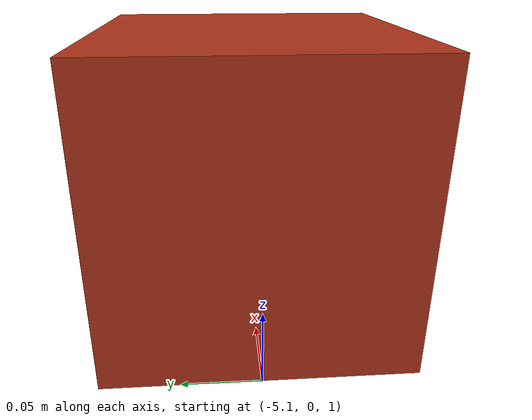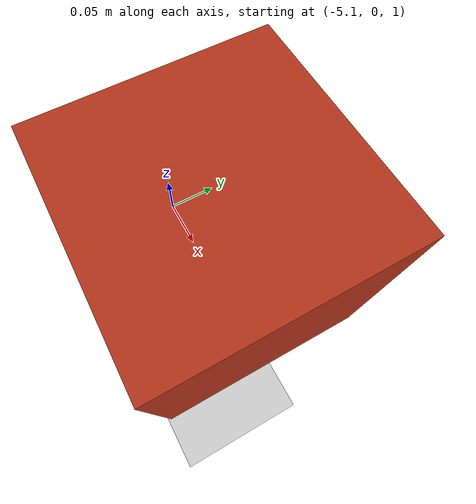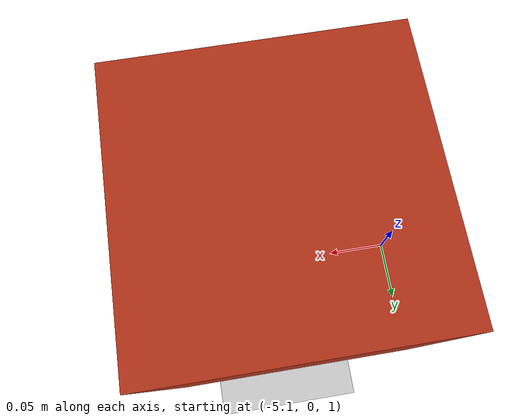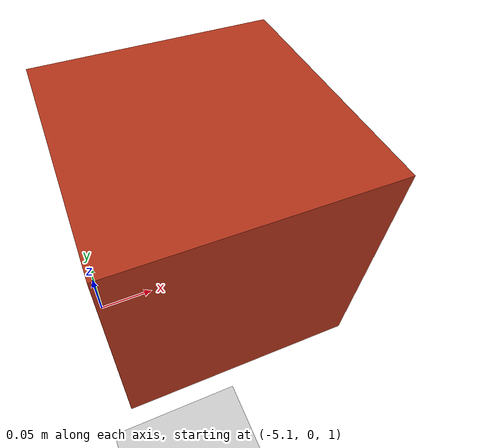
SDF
<?xml version="1.0" ?>

<sdf version="1.6">
  <world name="empty_platform">

    <physics name="4ms" type="dart">
      <max_step_size>0.004</max_step_size>
      <real_time_factor>1.0</real_time_factor>
    </physics>

    <plugin
      filename="ignition-gazebo-physics-system"
      name="ignition::gazebo::systems::Physics">
    </plugin>
    <plugin
      filename="ignition-gazebo-user-commands-system"
      name="ignition::gazebo::systems::UserCommands">
    </plugin>
    <plugin
      filename="ignition-gazebo-sensors-system"
      name="ignition::gazebo::systems::Sensors">
      <render_engine>ogre2</render_engine>
    </plugin>
    <plugin
      filename="ignition-gazebo-air-pressure-system"
      name="ignition::gazebo::systems::AirPressure">
    </plugin>
    <plugin
      filename="ignition-gazebo-altimeter-system"
      name="ignition::gazebo::systems::Altimeter">
    </plugin>
    <plugin
      filename="ignition-gazebo-imu-system"
      name="ignition::gazebo::systems::Imu">
    </plugin>
    <plugin
      filename="ignition-gazebo-magnetometer-system"
      name="ignition::gazebo::systems::Magnetometer">
    </plugin>
    <plugin
      filename="ignition-gazebo-forcetorque-system"
      name="ignition::gazebo::systems::ForceTorque">
    </plugin>
    <plugin
      filename="ignition-gazebo-particle-emitter2-system"
      name="ignition::gazebo::systems::ParticleEmitter2">
    </plugin>
    <plugin
      filename="ignition-gazebo-scene-broadcaster-system"
      name="ignition::gazebo::systems::SceneBroadcaster">
    </plugin>
    <plugin
      filename="ignition-gazebo-contact-system"
      name="ignition::gazebo::systems::Contact">
    </plugin>
    <plugin
      filename="ignition-gazebo-rf-comms-system"
      name="ignition::gazebo::systems::RFComms">
      <range_config>
        <max_range>500000.0</max_range>
        <fading_exponent>2.6</fading_exponent>
        <l0>40</l0>
        <sigma>10.0</sigma>
      </range_config>
      <radio_config>
        <capacity>1000000</capacity>
        <tx_power>20</tx_power>
        <noise_floor>-90</noise_floor>
        <modulation>QPSK</modulation>
      </radio_config>
    </plugin>
    <plugin
      filename="libRFRange.so"
      name="ignition::gazebo::systems::RFRange">
      <update_rate>1</update_rate>
      <range_config>
        <max_range>500000.0</max_range>
        <fading_exponent>2.6</fading_exponent>
        <l0>40</l0>
        <sigma>0.005</sigma>
        <rssi_1>-15</rssi_1>
      </range_config>
      <radio_config>
        <tx_power>25</tx_power>
        <noise_floor>-90</noise_floor>
      </radio_config>
    </plugin>

    <scene>
      <grid>false</grid>
      <ambient>1.0 1.0 1.0</ambient>
      <background>0.8 0.8 0.8</background>
    </scene>

    <light type="directional" name="sun">
      <cast_shadows>true</cast_shadows>
      <pose>0 0 10 0 0 0</pose>
      <diffuse>0.8 0.8 0.8 1</diffuse>
      <specular>0.2 0.2 0.2 1</specular>
      <attenuation>
        <range>1000</range>
        <constant>0.9</constant>
        <linear>0.01</linear>
        <quadratic>0.001</quadratic>
      </attenuation>
      <direction>-0.5 0.1 -0.9</direction>
    </light>

    <model name="ground_platform">
      <static>true</static>
      <pose>0 0 -1.5 0 0 0</pose>
      <link name="link">
        <collision name="collision">
          <geometry>
            <box>
              <size>20 20 3</size>
            </box>
          </geometry>
        </collision>
        <visual name="visual">
          <geometry>
            <box>
              <size>20 20 3</size>
            </box>
          </geometry>
          <material>
            <ambient>0.8 0.8 0.8 1</ambient>
            <diffuse>0.8 0.8 0.8 1</diffuse>
            <specular>0.8 0.8 0.8 1</specular>
          </material>
        </visual>
      </link>
    </model>

    <model name="base_station">
      <static>true</static>
      <pose>-5 0 1.1 0 0 0</pose>
      <link name="box_link">
        <collision name="box_collision">
          <geometry>
            <box>
              <size>0.2 0.2 0.2</size>
            </box>
          </geometry>
        </collision>

        <visual name="box_visual">
          <geometry>
            <box>
              <size>0.2 0.2 0.2</size>
            </box>
          </geometry>
          <material>
            <ambient>0.7 0.2 0.1 1</ambient>
            <diffuse>0.7 0.2 0.1 1</diffuse>
            <specular>0.7 0.2 0.1 1</specular>
          </material>
        </visual>
      </link>

      <plugin
        filename="ignition-gazebo-comms-endpoint-system"
        name="ignition::gazebo::systems::CommsEndpoint">
        <address>base_station/target</address>
        <topic>base_station/target</topic>
      </plugin>
      <plugin
        filename="ignition-gazebo-comms-endpoint-system"
        name="ignition::gazebo::systems::CommsEndpoint">
        <address>base_station/video</address>
        <topic>base_station/video</topic>
      </plugin>
      <plugin filename="libBaseStation.so"
              name="mbzirc::BaseStation">
        <target_topic>base_station/target</target_topic>
        <video_topic>base_station/video</video_topic>
      </plugin>
    </model>

    <!-- The MBZIRC competition logic plugin -->
    <plugin filename="libGameLogicPlugin.so"
            name="mbzirc::GameLogicPlugin">
      <run_duration_seconds>60</run_duration_seconds>
      <setup_duration_seconds>30</setup_duration_seconds>
    </plugin>

  </world>
</sdf>
